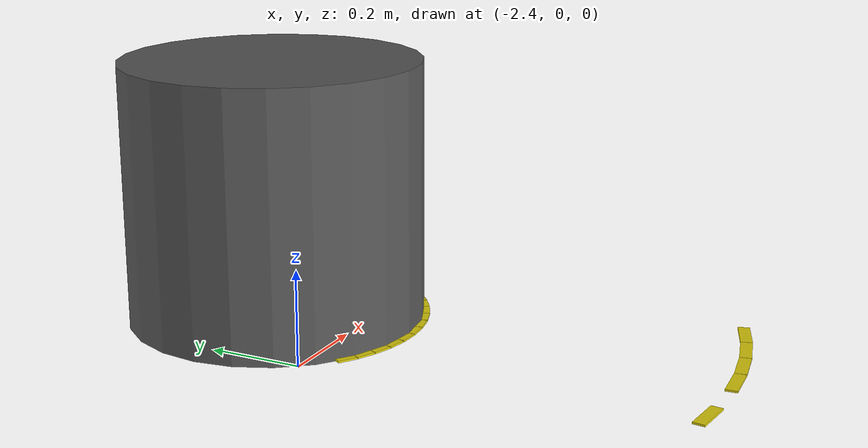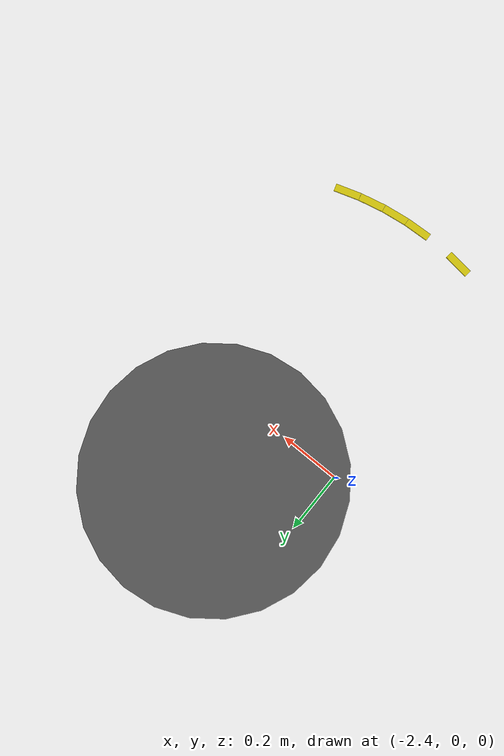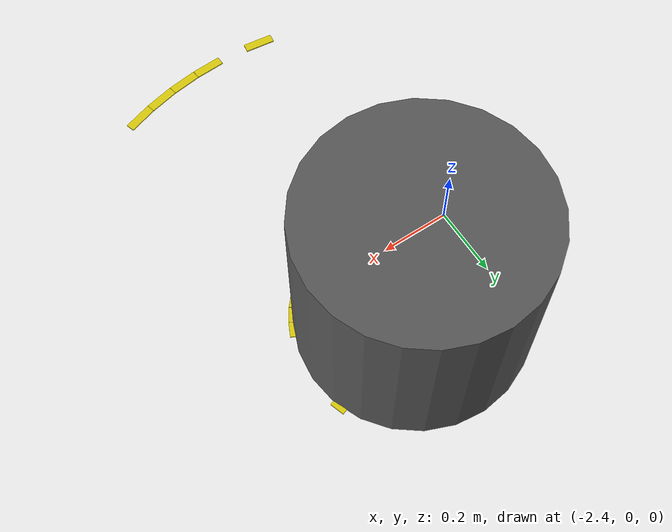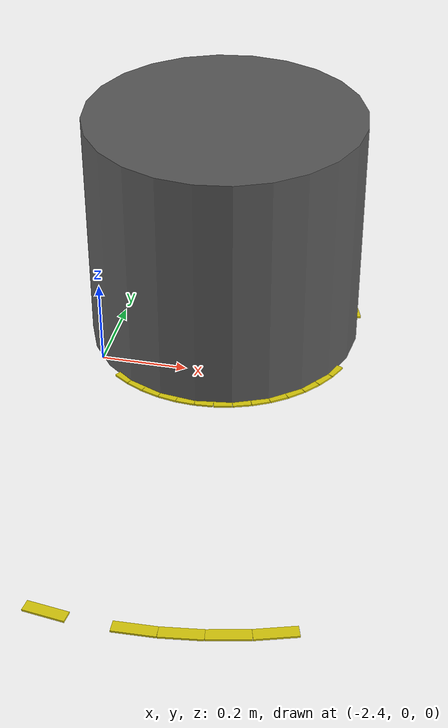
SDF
<sdf version="1.6">
 <world name="limo_competition">
  <include><uri>model://sun</uri></include>
  <model name="roundabout_outer_53">
   <static>true</static>
   <pose>-2.2804019602072945 -0.7905012255519768 0.003 0 0 -0.13089969389957626</pose>
   <link name="link">
    <visual name="visual">
     <geometry><box><size>0.08723877473067224 0.025 0.004</size></box></geometry>
     <material>
      <ambient>0.88 0.82 0.05 1.0</ambient>
      <diffuse>0.88 0.82 0.05 1.0</diffuse>
      <specular>0.05 0.05 0.05 1</specular>
     </material>
    </visual>
   </link>
  </model>
  <model name="roundabout_outer_55">
   <static>true</static>
   <pose>-2.1064221286261713 -0.7980973490458728 0.003 0 0 0.043633231299858334</pose>
   <link name="link">
    <visual name="visual">
     <geometry><box><size>0.08723877473067151 0.025 0.004</size></box></geometry>
     <material>
      <ambient>0.88 0.82 0.05 1.0</ambient>
      <diffuse>0.88 0.82 0.05 1.0</diffuse>
      <specular>0.05 0.05 0.05 1</specular>
     </material>
    </visual>
   </link>
  </model>
  <model name="roundabout_outer_56">
   <static>true</static>
   <pose>-2.0195980397927062 -0.7905012255519769 0.003 0 0 0.13089969389957373</pose>
   <link name="link">
    <visual name="visual">
     <geometry><box><size>0.08723877473067221 0.025 0.004</size></box></geometry>
     <material>
      <ambient>0.88 0.82 0.05 1.0</ambient>
      <diffuse>0.88 0.82 0.05 1.0</diffuse>
      <specular>0.05 0.05 0.05 1</specular>
     </material>
    </visual>
   </link>
  </model>
  <model name="roundabout_outer_57">
   <static>true</static>
   <pose>-1.9337663886152747 -0.7753667896506383 0.003 0 0 0.21816615649929097</pose>
   <link name="link">
    <visual name="visual">
     <geometry><box><size>0.08723877473067179 0.025 0.004</size></box></geometry>
     <material>
      <ambient>0.88 0.82 0.05 1.0</ambient>
      <diffuse>0.88 0.82 0.05 1.0</diffuse>
      <specular>0.05 0.05 0.05 1</specular>
     </material>
    </visual>
   </link>
  </model>
  <model name="roundabout_outer_58">
   <static>true</static>
   <pose>-1.8495804057859053 -0.7528092235374884 0.003 0 0 0.305432619099009</pose>
   <link name="link">
    <visual name="visual">
     <geometry><box><size>0.08723877473067268 0.025 0.004</size></box></geometry>
     <material>
      <ambient>0.88 0.82 0.05 1.0</ambient>
      <diffuse>0.88 0.82 0.05 1.0</diffuse>
      <specular>0.05 0.05 0.05 1</specular>
     </material>
    </visual>
   </link>
  </model>
  <model name="roundabout_island">
   <static>true</static>
   <pose>-2.15 0.2 0.28 0.0 0.0 0.0</pose>
   <link name="link">
    <collision name="collision">
     <geometry><cylinder><radius>0.32</radius><length>0.56</length></cylinder></geometry>
    </collision>
    <visual name="visual">
     <geometry><cylinder><radius>0.32</radius><length>0.56</length></cylinder></geometry>
     <material>
      <ambient>0.35 0.35 0.35 1.0</ambient>
      <diffuse>0.35 0.35 0.35 1.0</diffuse>
      <specular>0.05 0.05 0.05 1</specular>
     </material>
    </visual>
   </link>
  </model>
  <model name="roundabout_island_edge_3">
   <static>true</static>
   <pose>-1.847631142591943 0.30264039639481766 0.003 0 0 1.8980455615438347</pose>
   <link name="link">
    <visual name="visual">
     <geometry><box><size>0.04185800270729157 0.025 0.004</size></box></geometry>
     <material>
      <ambient>0.88 0.82 0.05 1.0</ambient>
      <diffuse>0.88 0.82 0.05 1.0</diffuse>
      <specular>0.05 0.05 0.05 1</specular>
     </material>
    </visual>
   </link>
  </model>
  <model name="roundabout_island_edge_32">
   <static>true</static>
   <pose>-2.3274018286413956 -0.06550059905210773 0.003 0 0 -0.5890486225480875</pose>
   <link name="link">
    <visual name="visual">
     <geometry><box><size>0.04185800270729154 0.025 0.004</size></box></geometry>
     <material>
      <ambient>0.88 0.82 0.05 1.0</ambient>
      <diffuse>0.88 0.82 0.05 1.0</diffuse>
      <specular>0.05 0.05 0.05 1</specular>
     </material>
    </visual>
   </link>
  </model>
  <model name="roundabout_island_edge_33">
   <static>true</static>
   <pose>-2.2912293491784146 -0.08638478980731604 0.003 0 0 -0.45814892864851203</pose>
   <link name="link">
    <visual name="visual">
     <geometry><box><size>0.04185800270729169 0.025 0.004</size></box></geometry>
     <material>
      <ambient>0.88 0.82 0.05 1.0</ambient>
      <diffuse>0.88 0.82 0.05 1.0</diffuse>
      <specular>0.05 0.05 0.05 1</specular>
     </material>
    </visual>
   </link>
  </model>
  <model name="roundabout_island_edge_34">
   <static>true</static>
   <pose>-2.252640396394818 -0.10236885740805682 0.003 0 0 -0.3272492347489365</pose>
   <link name="link">
    <visual name="visual">
     <geometry><box><size>0.041858002707291606 0.025 0.004</size></box></geometry>
     <material>
      <ambient>0.88 0.82 0.05 1.0</ambient>
      <diffuse>0.88 0.82 0.05 1.0</diffuse>
      <specular>0.05 0.05 0.05 1</specular>
     </material>
    </visual>
   </link>
  </model>
  <model name="roundabout_island_edge_35">
   <static>true</static>
   <pose>-2.2122952379716114 -0.1131793100260606 0.003 0 0 -0.19634954084936154</pose>
   <link name="link">
    <visual name="visual">
     <geometry><box><size>0.04185800270729167 0.025 0.004</size></box></geometry>
     <material>
      <ambient>0.88 0.82 0.05 1.0</ambient>
      <diffuse>0.88 0.82 0.05 1.0</diffuse>
      <specular>0.05 0.05 0.05 1</specular>
     </material>
    </visual>
   </link>
  </model>
  <model name="roundabout_island_edge_36">
   <static>true</static>
   <pose>-2.170884190755208 -0.11863117781980967 0.003 0 0 -0.06544984694978717</pose>
   <link name="link">
    <visual name="visual">
     <geometry><box><size>0.04185800270729145 0.025 0.004</size></box></geometry>
     <material>
      <ambient>0.88 0.82 0.05 1.0</ambient>
      <diffuse>0.88 0.82 0.05 1.0</diffuse>
      <specular>0.05 0.05 0.05 1</specular>
     </material>
    </visual>
   </link>
  </model>
  <model name="roundabout_island_edge_37">
   <static>true</static>
   <pose>-2.1291158092447917 -0.11863117781980967 0.003 0 0 0.06544984694978717</pose>
   <link name="link">
    <visual name="visual">
     <geometry><box><size>0.04185800270729145 0.025 0.004</size></box></geometry>
     <material>
      <ambient>0.88 0.82 0.05 1.0</ambient>
      <diffuse>0.88 0.82 0.05 1.0</diffuse>
      <specular>0.05 0.05 0.05 1</specular>
     </material>
    </visual>
   </link>
  </model>
  <model name="roundabout_island_edge_38">
   <static>true</static>
   <pose>-2.0877047620283884 -0.1131793100260606 0.003 0 0 0.19634954084936154</pose>
   <link name="link">
    <visual name="visual">
     <geometry><box><size>0.04185800270729167 0.025 0.004</size></box></geometry>
     <material>
      <ambient>0.88 0.82 0.05 1.0</ambient>
      <diffuse>0.88 0.82 0.05 1.0</diffuse>
      <specular>0.05 0.05 0.05 1</specular>
     </material>
    </visual>
   </link>
  </model>
  <model name="roundabout_island_edge_39">
   <static>true</static>
   <pose>-2.047359603605182 -0.10236885740805679 0.003 0 0 0.32724923474893775</pose>
   <link name="link">
    <visual name="visual">
     <geometry><box><size>0.041858002707291626 0.025 0.004</size></box></geometry>
     <material>
      <ambient>0.88 0.82 0.05 1.0</ambient>
      <diffuse>0.88 0.82 0.05 1.0</diffuse>
      <specular>0.05 0.05 0.05 1</specular>
     </material>
    </visual>
   </link>
  </model>
  <model name="roundabout_island_edge_40">
   <static>true</static>
   <pose>-2.0087706508215852 -0.08638478980731604 0.003 0 0 0.45814892864850965</pose>
   <link name="link">
    <visual name="visual">
     <geometry><box><size>0.04185800270729164 0.025 0.004</size></box></geometry>
     <material>
      <ambient>0.88 0.82 0.05 1.0</ambient>
      <diffuse>0.88 0.82 0.05 1.0</diffuse>
      <specular>0.05 0.05 0.05 1</specular>
     </material>
    </visual>
   </link>
  </model>
  <model name="roundabout_island_edge_41">
   <static>true</static>
   <pose>-1.9725981713586045 -0.06550059905210781 0.003 0 0 0.5890486225480864</pose>
   <link name="link">
    <visual name="visual">
     <geometry><box><size>0.04185800270729151 0.025 0.004</size></box></geometry>
     <material>
      <ambient>0.88 0.82 0.05 1.0</ambient>
      <diffuse>0.88 0.82 0.05 1.0</diffuse>
      <specular>0.05 0.05 0.05 1</specular>
     </material>
    </visual>
   </link>
  </model>
  <model name="roundabout_island_edge_42">
   <static>true</static>
   <pose>-1.9394610863687571 -0.04007361943644526 0.003 0 0 0.7199483164476639</pose>
   <link name="link">
    <visual name="visual">
     <geometry><box><size>0.04185800270729136 0.025 0.004</size></box></geometry>
     <material>
      <ambient>0.88 0.82 0.05 1.0</ambient>
      <diffuse>0.88 0.82 0.05 1.0</diffuse>
      <specular>0.05 0.05 0.05 1</specular>
     </material>
    </visual>
   </link>
  </model>
  <model name="roundabout_island_edge_43">
   <static>true</static>
   <pose>-1.909926380563555 -0.010538913631242972 0.003 0 0 0.8508480103472342</pose>
   <link name="link">
    <visual name="visual">
     <geometry><box><size>0.041858002707291564 0.025 0.004</size></box></geometry>
     <material>
      <ambient>0.88 0.82 0.05 1.0</ambient>
      <diffuse>0.88 0.82 0.05 1.0</diffuse>
      <specular>0.05 0.05 0.05 1</specular>
     </material>
    </visual>
   </link>
  </model>
  <model name="roundabout_island_edge_44">
   <static>true</static>
   <pose>-1.8844994009478921 0.02259817135860459 0.003 0 0 0.9817477042468079</pose>
   <link name="link">
    <visual name="visual">
     <geometry><box><size>0.04185800270729157 0.025 0.004</size></box></geometry>
     <material>
      <ambient>0.88 0.82 0.05 1.0</ambient>
      <diffuse>0.88 0.82 0.05 1.0</diffuse>
      <specular>0.05 0.05 0.05 1</specular>
     </material>
    </visual>
   </link>
  </model>
  <model name="roundabout_island_edge_45">
   <static>true</static>
   <pose>-1.863615210192684 0.058770650821585606 0.003 0 0 1.112647398146387</pose>
   <link name="link">
    <visual name="visual">
     <geometry><box><size>0.04185800270729175 0.025 0.004</size></box></geometry>
     <material>
      <ambient>0.88 0.82 0.05 1.0</ambient>
      <diffuse>0.88 0.82 0.05 1.0</diffuse>
      <specular>0.05 0.05 0.05 1</specular>
     </material>
    </visual>
   </link>
  </model>
 </world>
</sdf>
